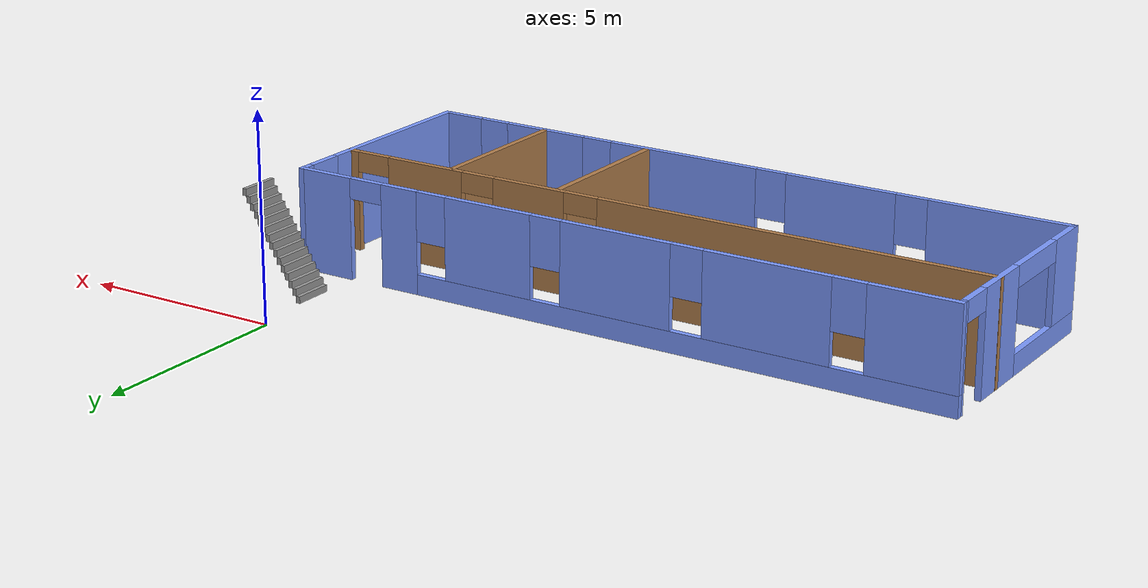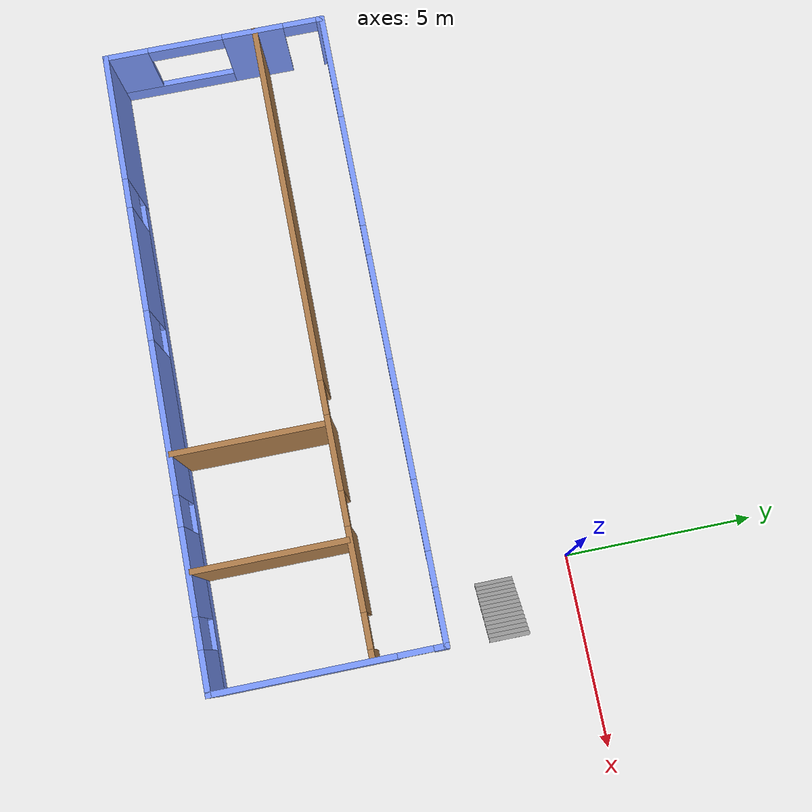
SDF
<?xml version='1.0'?>
<sdf version='1.6'>
  <model name='Marunouchi_Mansion'>
    <pose frame=''>-6.6954 -5.50792 0 0 -0 0</pose>
    <link name='Stairs_4'>
      <visual name='Stairs_4_Visual_0'>
        <pose frame=''>7.00606 3.48008 0.083333 0 -0 1.5708</pose>
        <geometry>
          <box>
            <size>1 0.105279 0.166667</size>
          </box>
        </geometry>
        <material>
          <script>
            <uri>file://media/materials/scripts/gazebo.material</uri>
            <name>Gazebo/Grey</name>
          </script>
          <ambient>1 1 1 1</ambient>
        </material>
        <meta>
          <layer>0</layer>
        </meta>
      </visual>
      <collision name='Stairs_4_Collision_0'>
        <geometry>
          <box>
            <size>1 0.105279 0.166667</size>
          </box>
        </geometry>
        <pose frame=''>7.00606 3.48008 0.083333 0 -0 1.5708</pose>
      </collision>
      <visual name='Stairs_4_Visual_1'>
        <pose frame=''>7.11134 3.48008 0.25 0 -0 1.5708</pose>
        <geometry>
          <box>
            <size>1 0.105279 0.166667</size>
          </box>
        </geometry>
        <material>
          <script>
            <uri>file://media/materials/scripts/gazebo.material</uri>
            <name>Gazebo/Grey</name>
          </script>
          <ambient>1 1 1 1</ambient>
        </material>
        <meta>
          <layer>0</layer>
        </meta>
      </visual>
      <collision name='Stairs_4_Collision_1'>
        <geometry>
          <box>
            <size>1 0.105279 0.166667</size>
          </box>
        </geometry>
        <pose frame=''>7.11134 3.48008 0.25 0 -0 1.5708</pose>
      </collision>
      <visual name='Stairs_4_Visual_2'>
        <pose frame=''>7.21662 3.48008 0.416667 0 -0 1.5708</pose>
        <geometry>
          <box>
            <size>1 0.105279 0.166667</size>
          </box>
        </geometry>
        <material>
          <script>
            <uri>file://media/materials/scripts/gazebo.material</uri>
            <name>Gazebo/Grey</name>
          </script>
          <ambient>1 1 1 1</ambient>
        </material>
        <meta>
          <layer>0</layer>
        </meta>
      </visual>
      <collision name='Stairs_4_Collision_2'>
        <geometry>
          <box>
            <size>1 0.105279 0.166667</size>
          </box>
        </geometry>
        <pose frame=''>7.21662 3.48008 0.416667 0 -0 1.5708</pose>
      </collision>
      <visual name='Stairs_4_Visual_3'>
        <pose frame=''>7.3219 3.48008 0.583333 0 -0 1.5708</pose>
        <geometry>
          <box>
            <size>1 0.105279 0.166667</size>
          </box>
        </geometry>
        <material>
          <script>
            <uri>file://media/materials/scripts/gazebo.material</uri>
            <name>Gazebo/Grey</name>
          </script>
          <ambient>1 1 1 1</ambient>
        </material>
        <meta>
          <layer>0</layer>
        </meta>
      </visual>
      <collision name='Stairs_4_Collision_3'>
        <geometry>
          <box>
            <size>1 0.105279 0.166667</size>
          </box>
        </geometry>
        <pose frame=''>7.3219 3.48008 0.583333 0 -0 1.5708</pose>
      </collision>
      <visual name='Stairs_4_Visual_4'>
        <pose frame=''>7.42718 3.48008 0.75 0 -0 1.5708</pose>
        <geometry>
          <box>
            <size>1 0.105279 0.166667</size>
          </box>
        </geometry>
        <material>
          <script>
            <uri>file://media/materials/scripts/gazebo.material</uri>
            <name>Gazebo/Grey</name>
          </script>
          <ambient>1 1 1 1</ambient>
        </material>
        <meta>
          <layer>0</layer>
        </meta>
      </visual>
      <collision name='Stairs_4_Collision_4'>
        <geometry>
          <box>
            <size>1 0.105279 0.166667</size>
          </box>
        </geometry>
        <pose frame=''>7.42718 3.48008 0.75 0 -0 1.5708</pose>
      </collision>
      <visual name='Stairs_4_Visual_5'>
        <pose frame=''>7.53245 3.48008 0.916667 0 -0 1.5708</pose>
        <geometry>
          <box>
            <size>1 0.105279 0.166667</size>
          </box>
        </geometry>
        <material>
          <script>
            <uri>file://media/materials/scripts/gazebo.material</uri>
            <name>Gazebo/Grey</name>
          </script>
          <ambient>1 1 1 1</ambient>
        </material>
        <meta>
          <layer>0</layer>
        </meta>
      </visual>
      <collision name='Stairs_4_Collision_5'>
        <geometry>
          <box>
            <size>1 0.105279 0.166667</size>
          </box>
        </geometry>
        <pose frame=''>7.53245 3.48008 0.916667 0 -0 1.5708</pose>
      </collision>
      <visual name='Stairs_4_Visual_6'>
        <pose frame=''>7.63773 3.48008 1.08333 0 -0 1.5708</pose>
        <geometry>
          <box>
            <size>1 0.105279 0.166667</size>
          </box>
        </geometry>
        <material>
          <script>
            <uri>file://media/materials/scripts/gazebo.material</uri>
            <name>Gazebo/Grey</name>
          </script>
          <ambient>1 1 1 1</ambient>
        </material>
        <meta>
          <layer>0</layer>
        </meta>
      </visual>
      <collision name='Stairs_4_Collision_6'>
        <geometry>
          <box>
            <size>1 0.105279 0.166667</size>
          </box>
        </geometry>
        <pose frame=''>7.63773 3.48008 1.08333 0 -0 1.5708</pose>
      </collision>
      <visual name='Stairs_4_Visual_7'>
        <pose frame=''>7.74301 3.48008 1.25 0 -0 1.5708</pose>
        <geometry>
          <box>
            <size>1 0.105279 0.166667</size>
          </box>
        </geometry>
        <material>
          <script>
            <uri>file://media/materials/scripts/gazebo.material</uri>
            <name>Gazebo/Grey</name>
          </script>
          <ambient>1 1 1 1</ambient>
        </material>
        <meta>
          <layer>0</layer>
        </meta>
      </visual>
      <collision name='Stairs_4_Collision_7'>
        <geometry>
          <box>
            <size>1 0.105279 0.166667</size>
          </box>
        </geometry>
        <pose frame=''>7.74301 3.48008 1.25 0 -0 1.5708</pose>
      </collision>
      <visual name='Stairs_4_Visual_8'>
        <pose frame=''>7.84829 3.48008 1.41667 0 -0 1.5708</pose>
        <geometry>
          <box>
            <size>1 0.105279 0.166667</size>
          </box>
        </geometry>
        <material>
          <script>
            <uri>file://media/materials/scripts/gazebo.material</uri>
            <name>Gazebo/Grey</name>
          </script>
          <ambient>1 1 1 1</ambient>
        </material>
        <meta>
          <layer>0</layer>
        </meta>
      </visual>
      <collision name='Stairs_4_Collision_8'>
        <geometry>
          <box>
            <size>1 0.105279 0.166667</size>
          </box>
        </geometry>
        <pose frame=''>7.84829 3.48008 1.41667 0 -0 1.5708</pose>
      </collision>
      <visual name='Stairs_4_Visual_9'>
        <pose frame=''>7.95357 3.48008 1.58333 0 -0 1.5708</pose>
        <geometry>
          <box>
            <size>1 0.105279 0.166667</size>
          </box>
        </geometry>
        <material>
          <script>
            <uri>file://media/materials/scripts/gazebo.material</uri>
            <name>Gazebo/Grey</name>
          </script>
          <ambient>1 1 1 1</ambient>
        </material>
        <meta>
          <layer>0</layer>
        </meta>
      </visual>
      <collision name='Stairs_4_Collision_9'>
        <geometry>
          <box>
            <size>1 0.105279 0.166667</size>
          </box>
        </geometry>
        <pose frame=''>7.95357 3.48008 1.58333 0 -0 1.5708</pose>
      </collision>
      <visual name='Stairs_4_Visual_10'>
        <pose frame=''>8.05885 3.48008 1.75 0 -0 1.5708</pose>
        <geometry>
          <box>
            <size>1 0.105279 0.166667</size>
          </box>
        </geometry>
        <material>
          <script>
            <uri>file://media/materials/scripts/gazebo.material</uri>
            <name>Gazebo/Grey</name>
          </script>
          <ambient>1 1 1 1</ambient>
        </material>
        <meta>
          <layer>0</layer>
        </meta>
      </visual>
      <collision name='Stairs_4_Collision_10'>
        <geometry>
          <box>
            <size>1 0.105279 0.166667</size>
          </box>
        </geometry>
        <pose frame=''>8.05885 3.48008 1.75 0 -0 1.5708</pose>
      </collision>
      <visual name='Stairs_4_Visual_11'>
        <pose frame=''>8.16413 3.48008 1.91667 0 -0 1.5708</pose>
        <geometry>
          <box>
            <size>1 0.105279 0.166667</size>
          </box>
        </geometry>
        <material>
          <script>
            <uri>file://media/materials/scripts/gazebo.material</uri>
            <name>Gazebo/Grey</name>
          </script>
          <ambient>1 1 1 1</ambient>
        </material>
        <meta>
          <layer>0</layer>
        </meta>
      </visual>
      <collision name='Stairs_4_Collision_11'>
        <geometry>
          <box>
            <size>1 0.105279 0.166667</size>
          </box>
        </geometry>
        <pose frame=''>8.16413 3.48008 1.91667 0 -0 1.5708</pose>
      </collision>
      <visual name='Stairs_4_Visual_12'>
        <pose frame=''>8.26941 3.48008 2.08333 0 -0 1.5708</pose>
        <geometry>
          <box>
            <size>1 0.105279 0.166667</size>
          </box>
        </geometry>
        <material>
          <script>
            <uri>file://media/materials/scripts/gazebo.material</uri>
            <name>Gazebo/Grey</name>
          </script>
          <ambient>1 1 1 1</ambient>
        </material>
        <meta>
          <layer>0</layer>
        </meta>
      </visual>
      <collision name='Stairs_4_Collision_12'>
        <geometry>
          <box>
            <size>1 0.105279 0.166667</size>
          </box>
        </geometry>
        <pose frame=''>8.26941 3.48008 2.08333 0 -0 1.5708</pose>
      </collision>
      <visual name='Stairs_4_Visual_13'>
        <pose frame=''>8.37468 3.48008 2.25 0 -0 1.5708</pose>
        <geometry>
          <box>
            <size>1 0.105279 0.166667</size>
          </box>
        </geometry>
        <material>
          <script>
            <uri>file://media/materials/scripts/gazebo.material</uri>
            <name>Gazebo/Grey</name>
          </script>
          <ambient>1 1 1 1</ambient>
        </material>
        <meta>
          <layer>0</layer>
        </meta>
      </visual>
      <collision name='Stairs_4_Collision_13'>
        <geometry>
          <box>
            <size>1 0.105279 0.166667</size>
          </box>
        </geometry>
        <pose frame=''>8.37468 3.48008 2.25 0 -0 1.5708</pose>
      </collision>
      <visual name='Stairs_4_Visual_14'>
        <pose frame=''>8.47996 3.48008 2.41667 0 -0 1.5708</pose>
        <geometry>
          <box>
            <size>1 0.105279 0.166667</size>
          </box>
        </geometry>
        <material>
          <script>
            <uri>file://media/materials/scripts/gazebo.material</uri>
            <name>Gazebo/Grey</name>
          </script>
          <ambient>1 1 1 1</ambient>
        </material>
        <meta>
          <layer>0</layer>
        </meta>
      </visual>
      <collision name='Stairs_4_Collision_14'>
        <geometry>
          <box>
            <size>1 0.105279 0.166667</size>
          </box>
        </geometry>
        <pose frame=''>8.47996 3.48008 2.41667 0 -0 1.5708</pose>
      </collision>
    </link>
    <link name='Wall_12'>
      <pose frame=''>-0.027601 -3.90508 0 0 -0 0</pose>
      <visual name='Wall_12_Visual_0'>
        <pose frame=''>-6.72865 0 1.25 0 -0 0</pose>
        <geometry>
          <box>
            <size>3.54271 0.15 2.5</size>
          </box>
        </geometry>
        <material>
          <script>
            <uri>file://media/materials/scripts/gazebo.material</uri>
            <name>Gazebo/Grey</name>
          </script>
          <ambient>0.486275 0.607843 1 1</ambient>
        </material>
        <meta>
          <layer>0</layer>
        </meta>
      </visual>
      <collision name='Wall_12_Collision_0'>
        <geometry>
          <box>
            <size>3.54271 0.15 2.5</size>
          </box>
        </geometry>
        <pose frame=''>-6.72865 0 1.25 0 -0 0</pose>
      </collision>
      <visual name='Wall_12_Visual_1'>
        <pose frame=''>1.77135 0 0.25 0 -0 0</pose>
        <geometry>
          <box>
            <size>13.4573 0.15 0.5</size>
          </box>
        </geometry>
        <material>
          <script>
            <uri>file://media/materials/scripts/gazebo.material</uri>
            <name>Gazebo/Grey</name>
          </script>
          <ambient>0.486275 0.607843 1 1</ambient>
        </material>
        <meta>
          <layer>0</layer>
        </meta>
      </visual>
      <collision name='Wall_12_Collision_1'>
        <geometry>
          <box>
            <size>13.4573 0.15 0.5</size>
          </box>
        </geometry>
        <pose frame=''>1.77135 0 0.25 0 -0 0</pose>
      </collision>
      <visual name='Wall_12_Visual_2'>
        <pose frame=''>-2.74365 0 1.5 0 -0 0</pose>
        <geometry>
          <box>
            <size>2.82729 0.15 2</size>
          </box>
        </geometry>
        <material>
          <script>
            <uri>file://media/materials/scripts/gazebo.material</uri>
            <name>Gazebo/Grey</name>
          </script>
          <ambient>0.486275 0.607843 1 1</ambient>
        </material>
        <meta>
          <layer>0</layer>
        </meta>
      </visual>
      <collision name='Wall_12_Collision_2'>
        <geometry>
          <box>
            <size>2.82729 0.15 2</size>
          </box>
        </geometry>
        <pose frame=''>-2.74365 0 1.5 0 -0 0</pose>
      </collision>
      <visual name='Wall_12_Visual_3'>
        <pose frame=''>1.48818 0 1.5 0 -0 0</pose>
        <geometry>
          <box>
            <size>4.03638 0.15 2</size>
          </box>
        </geometry>
        <material>
          <script>
            <uri>file://media/materials/scripts/gazebo.material</uri>
            <name>Gazebo/Grey</name>
          </script>
          <ambient>0.486275 0.607843 1 1</ambient>
        </material>
        <meta>
          <layer>0</layer>
        </meta>
      </visual>
      <collision name='Wall_12_Collision_3'>
        <geometry>
          <box>
            <size>4.03638 0.15 2</size>
          </box>
        </geometry>
        <pose frame=''>1.48818 0 1.5 0 -0 0</pose>
      </collision>
      <visual name='Wall_12_Visual_4'>
        <pose frame=''>5.42345 0 1.5 0 -0 0</pose>
        <geometry>
          <box>
            <size>2.23415 0.15 2</size>
          </box>
        </geometry>
        <material>
          <script>
            <uri>file://media/materials/scripts/gazebo.material</uri>
            <name>Gazebo/Grey</name>
          </script>
          <ambient>0.486275 0.607843 1 1</ambient>
        </material>
        <meta>
          <layer>0</layer>
        </meta>
      </visual>
      <collision name='Wall_12_Collision_4'>
        <geometry>
          <box>
            <size>2.23415 0.15 2</size>
          </box>
        </geometry>
        <pose frame=''>5.42345 0 1.5 0 -0 0</pose>
      </collision>
      <visual name='Wall_12_Visual_5'>
        <pose frame=''>7.92026 0 1.5 0 -0 0</pose>
        <geometry>
          <box>
            <size>1.15948 0.15 2</size>
          </box>
        </geometry>
        <material>
          <script>
            <uri>file://media/materials/scripts/gazebo.material</uri>
            <name>Gazebo/Grey</name>
          </script>
          <ambient>0.486275 0.607843 1 1</ambient>
        </material>
        <meta>
          <layer>0</layer>
        </meta>
      </visual>
      <collision name='Wall_12_Collision_5'>
        <geometry>
          <box>
            <size>1.15948 0.15 2</size>
          </box>
        </geometry>
        <pose frame=''>7.92026 0 1.5 0 -0 0</pose>
      </collision>
      <visual name='Wall_12_Visual_6'>
        <pose frame=''>-4.55729 0 1.9 0 -0 0</pose>
        <geometry>
          <box>
            <size>0.8 0.15 1.2</size>
          </box>
        </geometry>
        <material>
          <script>
            <uri>file://media/materials/scripts/gazebo.material</uri>
            <name>Gazebo/Grey</name>
          </script>
          <ambient>0.486275 0.607843 1 1</ambient>
        </material>
        <meta>
          <layer>0</layer>
        </meta>
      </visual>
      <collision name='Wall_12_Collision_6'>
        <geometry>
          <box>
            <size>0.8 0.15 1.2</size>
          </box>
        </geometry>
        <pose frame=''>-4.55729 0 1.9 0 -0 0</pose>
      </collision>
      <visual name='Wall_12_Visual_7'>
        <pose frame=''>-0.930008 0 1.9 0 -0 0</pose>
        <geometry>
          <box>
            <size>0.8 0.15 1.2</size>
          </box>
        </geometry>
        <material>
          <script>
            <uri>file://media/materials/scripts/gazebo.material</uri>
            <name>Gazebo/Grey</name>
          </script>
          <ambient>0.486275 0.607843 1 1</ambient>
        </material>
        <meta>
          <layer>0</layer>
        </meta>
      </visual>
      <collision name='Wall_12_Collision_7'>
        <geometry>
          <box>
            <size>0.8 0.15 1.2</size>
          </box>
        </geometry>
        <pose frame=''>-0.930008 0 1.9 0 -0 0</pose>
      </collision>
      <visual name='Wall_12_Visual_8'>
        <pose frame=''>3.90637 0 1.9 0 -0 0</pose>
        <geometry>
          <box>
            <size>0.8 0.15 1.2</size>
          </box>
        </geometry>
        <material>
          <script>
            <uri>file://media/materials/scripts/gazebo.material</uri>
            <name>Gazebo/Grey</name>
          </script>
          <ambient>0.486275 0.607843 1 1</ambient>
        </material>
        <meta>
          <layer>0</layer>
        </meta>
      </visual>
      <collision name='Wall_12_Collision_8'>
        <geometry>
          <box>
            <size>0.8 0.15 1.2</size>
          </box>
        </geometry>
        <pose frame=''>3.90637 0 1.9 0 -0 0</pose>
      </collision>
      <visual name='Wall_12_Visual_9'>
        <pose frame=''>6.94052 0 1.9 0 -0 0</pose>
        <geometry>
          <box>
            <size>0.8 0.15 1.2</size>
          </box>
        </geometry>
        <material>
          <script>
            <uri>file://media/materials/scripts/gazebo.material</uri>
            <name>Gazebo/Grey</name>
          </script>
          <ambient>0.486275 0.607843 1 1</ambient>
        </material>
        <meta>
          <layer>0</layer>
        </meta>
      </visual>
      <collision name='Wall_12_Collision_9'>
        <geometry>
          <box>
            <size>0.8 0.15 1.2</size>
          </box>
        </geometry>
        <pose frame=''>6.94052 0 1.9 0 -0 0</pose>
      </collision>
    </link>
    <link name='Wall_13'>
      <pose frame=''>8.3974 -0.980078 0 0 -0 1.5708</pose>
      <visual name='Wall_13_Visual_0'>
        <pose frame=''>-0.647452 0 1.25 0 -0 0</pose>
        <geometry>
          <box>
            <size>4.7051 0.15 2.5</size>
          </box>
        </geometry>
        <material>
          <script>
            <uri>file://media/materials/scripts/gazebo.material</uri>
            <name>Gazebo/Grey</name>
          </script>
          <ambient>0.486275 0.607843 1 1</ambient>
        </material>
        <meta>
          <layer>0</layer>
        </meta>
      </visual>
      <collision name='Wall_13_Collision_0'>
        <geometry>
          <box>
            <size>4.7051 0.15 2.5</size>
          </box>
        </geometry>
        <pose frame=''>-0.647452 0 1.25 0 -0 0</pose>
      </collision>
      <visual name='Wall_13_Visual_1'>
        <pose frame=''>2.80255 0 1.25 0 -0 0</pose>
        <geometry>
          <box>
            <size>0.394905 0.15 2.5</size>
          </box>
        </geometry>
        <material>
          <script>
            <uri>file://media/materials/scripts/gazebo.material</uri>
            <name>Gazebo/Grey</name>
          </script>
          <ambient>0.486275 0.607843 1 1</ambient>
        </material>
        <meta>
          <layer>0</layer>
        </meta>
      </visual>
      <collision name='Wall_13_Collision_1'>
        <geometry>
          <box>
            <size>0.394905 0.15 2.5</size>
          </box>
        </geometry>
        <pose frame=''>2.80255 0 1.25 0 -0 0</pose>
      </collision>
      <visual name='Wall_13_Visual_2'>
        <pose frame=''>2.1551 0 2.25 0 -0 0</pose>
        <geometry>
          <box>
            <size>0.9 0.15 0.5</size>
          </box>
        </geometry>
        <material>
          <script>
            <uri>file://media/materials/scripts/gazebo.material</uri>
            <name>Gazebo/Grey</name>
          </script>
          <ambient>0.486275 0.607843 1 1</ambient>
        </material>
        <meta>
          <layer>0</layer>
        </meta>
      </visual>
      <collision name='Wall_13_Collision_2'>
        <geometry>
          <box>
            <size>0.9 0.15 0.5</size>
          </box>
        </geometry>
        <pose frame=''>2.1551 0 2.25 0 -0 0</pose>
      </collision>
    </link>
    <link name='Wall_14'>
      <pose frame=''>-0.027601 1.94492 0 0 -0 3.14159</pose>
      <visual name='Wall_14_Visual_0'>
        <pose frame=''>-7.74488 0 1.25 0 -0 0</pose>
        <geometry>
          <box>
            <size>1.51025 0.15 2.5</size>
          </box>
        </geometry>
        <material>
          <script>
            <uri>file://media/materials/scripts/gazebo.material</uri>
            <name>Gazebo/Grey</name>
          </script>
          <ambient>0.486275 0.607843 1 1</ambient>
        </material>
        <meta>
          <layer>0</layer>
        </meta>
      </visual>
      <collision name='Wall_14_Collision_0'>
        <geometry>
          <box>
            <size>1.51025 0.15 2.5</size>
          </box>
        </geometry>
        <pose frame=''>-7.74488 0 1.25 0 -0 0</pose>
      </collision>
      <visual name='Wall_14_Visual_1'>
        <pose frame=''>-5.58589 0 1.25 0 -0 0</pose>
        <geometry>
          <box>
            <size>1.00774 0.15 2.5</size>
          </box>
        </geometry>
        <material>
          <script>
            <uri>file://media/materials/scripts/gazebo.material</uri>
            <name>Gazebo/Grey</name>
          </script>
          <ambient>0.486275 0.607843 1 1</ambient>
        </material>
        <meta>
          <layer>0</layer>
        </meta>
      </visual>
      <collision name='Wall_14_Collision_1'>
        <geometry>
          <box>
            <size>1.00774 0.15 2.5</size>
          </box>
        </geometry>
        <pose frame=''>-5.58589 0 1.25 0 -0 0</pose>
      </collision>
      <visual name='Wall_14_Visual_2'>
        <pose frame=''>1.70899 0 0.25 0 -0 0</pose>
        <geometry>
          <box>
            <size>13.582 0.15 0.5</size>
          </box>
        </geometry>
        <material>
          <script>
            <uri>file://media/materials/scripts/gazebo.material</uri>
            <name>Gazebo/Grey</name>
          </script>
          <ambient>0.486275 0.607843 1 1</ambient>
        </material>
        <meta>
          <layer>0</layer>
        </meta>
      </visual>
      <collision name='Wall_14_Collision_2'>
        <geometry>
          <box>
            <size>13.582 0.15 0.5</size>
          </box>
        </geometry>
        <pose frame=''>1.70899 0 0.25 0 -0 0</pose>
      </collision>
      <visual name='Wall_14_Visual_3'>
        <pose frame=''>-3.11932 0 1.5 0 -0 0</pose>
        <geometry>
          <box>
            <size>2.3254 0.15 2</size>
          </box>
        </geometry>
        <material>
          <script>
            <uri>file://media/materials/scripts/gazebo.material</uri>
            <name>Gazebo/Grey</name>
          </script>
          <ambient>0.486275 0.607843 1 1</ambient>
        </material>
        <meta>
          <layer>0</layer>
        </meta>
      </visual>
      <collision name='Wall_14_Collision_3'>
        <geometry>
          <box>
            <size>2.3254 0.15 2</size>
          </box>
        </geometry>
        <pose frame=''>-3.11932 0 1.5 0 -0 0</pose>
      </collision>
      <visual name='Wall_14_Visual_4'>
        <pose frame=''>0.257021 0 1.5 0 -0 0</pose>
        <geometry>
          <box>
            <size>2.82729 0.15 2</size>
          </box>
        </geometry>
        <material>
          <script>
            <uri>file://media/materials/scripts/gazebo.material</uri>
            <name>Gazebo/Grey</name>
          </script>
          <ambient>0.486275 0.607843 1 1</ambient>
        </material>
        <meta>
          <layer>0</layer>
        </meta>
      </visual>
      <collision name='Wall_14_Collision_4'>
        <geometry>
          <box>
            <size>2.82729 0.15 2</size>
          </box>
        </geometry>
        <pose frame=''>0.257021 0 1.5 0 -0 0</pose>
      </collision>
      <visual name='Wall_14_Visual_5'>
        <pose frame=''>4.00978 0 1.5 0 -0 0</pose>
        <geometry>
          <box>
            <size>3.07823 0.15 2</size>
          </box>
        </geometry>
        <material>
          <script>
            <uri>file://media/materials/scripts/gazebo.material</uri>
            <name>Gazebo/Grey</name>
          </script>
          <ambient>0.486275 0.607843 1 1</ambient>
        </material>
        <meta>
          <layer>0</layer>
        </meta>
      </visual>
      <collision name='Wall_14_Collision_5'>
        <geometry>
          <box>
            <size>3.07823 0.15 2</size>
          </box>
        </geometry>
        <pose frame=''>4.00978 0 1.5 0 -0 0</pose>
      </collision>
      <visual name='Wall_14_Visual_6'>
        <pose frame=''>7.42445 0 1.5 0 -0 0</pose>
        <geometry>
          <box>
            <size>2.1511 0.15 2</size>
          </box>
        </geometry>
        <material>
          <script>
            <uri>file://media/materials/scripts/gazebo.material</uri>
            <name>Gazebo/Grey</name>
          </script>
          <ambient>0.486275 0.607843 1 1</ambient>
        </material>
        <meta>
          <layer>0</layer>
        </meta>
      </visual>
      <collision name='Wall_14_Collision_6'>
        <geometry>
          <box>
            <size>2.1511 0.15 2</size>
          </box>
        </geometry>
        <pose frame=''>7.42445 0 1.5 0 -0 0</pose>
      </collision>
      <visual name='Wall_14_Visual_7'>
        <pose frame=''>-4.68202 0 1.9 0 -0 0</pose>
        <geometry>
          <box>
            <size>0.8 0.15 1.2</size>
          </box>
        </geometry>
        <material>
          <script>
            <uri>file://media/materials/scripts/gazebo.material</uri>
            <name>Gazebo/Grey</name>
          </script>
          <ambient>0.486275 0.607843 1 1</ambient>
        </material>
        <meta>
          <layer>0</layer>
        </meta>
      </visual>
      <collision name='Wall_14_Collision_7'>
        <geometry>
          <box>
            <size>0.8 0.15 1.2</size>
          </box>
        </geometry>
        <pose frame=''>-4.68202 0 1.9 0 -0 0</pose>
      </collision>
      <visual name='Wall_14_Visual_8'>
        <pose frame=''>-1.55662 0 1.9 0 -0 0</pose>
        <geometry>
          <box>
            <size>0.8 0.15 1.2</size>
          </box>
        </geometry>
        <material>
          <script>
            <uri>file://media/materials/scripts/gazebo.material</uri>
            <name>Gazebo/Grey</name>
          </script>
          <ambient>0.486275 0.607843 1 1</ambient>
        </material>
        <meta>
          <layer>0</layer>
        </meta>
      </visual>
      <collision name='Wall_14_Collision_8'>
        <geometry>
          <box>
            <size>0.8 0.15 1.2</size>
          </box>
        </geometry>
        <pose frame=''>-1.55662 0 1.9 0 -0 0</pose>
      </collision>
      <visual name='Wall_14_Visual_9'>
        <pose frame=''>2.07066 0 1.9 0 -0 0</pose>
        <geometry>
          <box>
            <size>0.8 0.15 1.2</size>
          </box>
        </geometry>
        <material>
          <script>
            <uri>file://media/materials/scripts/gazebo.material</uri>
            <name>Gazebo/Grey</name>
          </script>
          <ambient>0.486275 0.607843 1 1</ambient>
        </material>
        <meta>
          <layer>0</layer>
        </meta>
      </visual>
      <collision name='Wall_14_Collision_9'>
        <geometry>
          <box>
            <size>0.8 0.15 1.2</size>
          </box>
        </geometry>
        <pose frame=''>2.07066 0 1.9 0 -0 0</pose>
      </collision>
      <visual name='Wall_14_Visual_10'>
        <pose frame=''>5.9489 0 1.9 0 -0 0</pose>
        <geometry>
          <box>
            <size>0.8 0.15 1.2</size>
          </box>
        </geometry>
        <material>
          <script>
            <uri>file://media/materials/scripts/gazebo.material</uri>
            <name>Gazebo/Grey</name>
          </script>
          <ambient>0.486275 0.607843 1 1</ambient>
        </material>
        <meta>
          <layer>0</layer>
        </meta>
      </visual>
      <collision name='Wall_14_Collision_10'>
        <geometry>
          <box>
            <size>0.8 0.15 1.2</size>
          </box>
        </geometry>
        <pose frame=''>5.9489 0 1.9 0 -0 0</pose>
      </collision>
      <visual name='Wall_14_Visual_11'>
        <pose frame=''>-6.53976 0 2.25 0 -0 0</pose>
        <geometry>
          <box>
            <size>0.9 0.15 0.5</size>
          </box>
        </geometry>
        <material>
          <script>
            <uri>file://media/materials/scripts/gazebo.material</uri>
            <name>Gazebo/Grey</name>
          </script>
          <ambient>0.486275 0.607843 1 1</ambient>
        </material>
        <meta>
          <layer>0</layer>
        </meta>
      </visual>
      <collision name='Wall_14_Collision_11'>
        <geometry>
          <box>
            <size>0.9 0.15 0.5</size>
          </box>
        </geometry>
        <pose frame=''>-6.53976 0 2.25 0 -0 0</pose>
      </collision>
    </link>
    <link name='Wall_15'>
      <pose frame=''>-8.4526 -0.980078 0 0 0 -1.5708</pose>
      <visual name='Wall_15_Visual_0'>
        <pose frame=''>-2.8827 0 1.25 0 -0 0</pose>
        <geometry>
          <box>
            <size>0.234611 0.15 2.5</size>
          </box>
        </geometry>
        <material>
          <script>
            <uri>file://media/materials/scripts/gazebo.material</uri>
            <name>Gazebo/Grey</name>
          </script>
          <ambient>0.486275 0.607843 1 1</ambient>
        </material>
        <meta>
          <layer>0</layer>
        </meta>
      </visual>
      <collision name='Wall_15_Collision_0'>
        <geometry>
          <box>
            <size>0.234611 0.15 2.5</size>
          </box>
        </geometry>
        <pose frame=''>-2.8827 0 1.25 0 -0 0</pose>
      </collision>
      <visual name='Wall_15_Visual_1'>
        <pose frame=''>-1.0388 0 1.25 0 -0 0</pose>
        <geometry>
          <box>
            <size>1.65319 0.15 2.5</size>
          </box>
        </geometry>
        <material>
          <script>
            <uri>file://media/materials/scripts/gazebo.material</uri>
            <name>Gazebo/Grey</name>
          </script>
          <ambient>0.486275 0.607843 1 1</ambient>
        </material>
        <meta>
          <layer>0</layer>
        </meta>
      </visual>
      <collision name='Wall_15_Collision_1'>
        <geometry>
          <box>
            <size>1.65319 0.15 2.5</size>
          </box>
        </geometry>
        <pose frame=''>-1.0388 0 1.25 0 -0 0</pose>
      </collision>
      <visual name='Wall_15_Visual_2'>
        <pose frame=''>1.3939 0 0.25 0 -0 0</pose>
        <geometry>
          <box>
            <size>3.2122 0.15 0.5</size>
          </box>
        </geometry>
        <material>
          <script>
            <uri>file://media/materials/scripts/gazebo.material</uri>
            <name>Gazebo/Grey</name>
          </script>
          <ambient>0.486275 0.607843 1 1</ambient>
        </material>
        <meta>
          <layer>0</layer>
        </meta>
      </visual>
      <collision name='Wall_15_Collision_2'>
        <geometry>
          <box>
            <size>3.2122 0.15 0.5</size>
          </box>
        </geometry>
        <pose frame=''>1.3939 0 0.25 0 -0 0</pose>
      </collision>
      <visual name='Wall_15_Visual_3'>
        <pose frame=''>2.3939 0 1.5 0 -0 0</pose>
        <geometry>
          <box>
            <size>1.2122 0.15 2</size>
          </box>
        </geometry>
        <material>
          <script>
            <uri>file://media/materials/scripts/gazebo.material</uri>
            <name>Gazebo/Grey</name>
          </script>
          <ambient>0.486275 0.607843 1 1</ambient>
        </material>
        <meta>
          <layer>0</layer>
        </meta>
      </visual>
      <collision name='Wall_15_Collision_3'>
        <geometry>
          <box>
            <size>1.2122 0.15 2</size>
          </box>
        </geometry>
        <pose frame=''>2.3939 0 1.5 0 -0 0</pose>
      </collision>
      <visual name='Wall_15_Visual_4'>
        <pose frame=''>-2.31539 0 2.25 0 -0 0</pose>
        <geometry>
          <box>
            <size>0.9 0.15 0.5</size>
          </box>
        </geometry>
        <material>
          <script>
            <uri>file://media/materials/scripts/gazebo.material</uri>
            <name>Gazebo/Grey</name>
          </script>
          <ambient>0.486275 0.607843 1 1</ambient>
        </material>
        <meta>
          <layer>0</layer>
        </meta>
      </visual>
      <collision name='Wall_15_Collision_4'>
        <geometry>
          <box>
            <size>0.9 0.15 0.5</size>
          </box>
        </geometry>
        <pose frame=''>-2.31539 0 2.25 0 -0 0</pose>
      </collision>
      <visual name='Wall_15_Visual_5'>
        <pose frame=''>0.787798 0 2.25 0 -0 0</pose>
        <geometry>
          <box>
            <size>2 0.15 0.5</size>
          </box>
        </geometry>
        <material>
          <script>
            <uri>file://media/materials/scripts/gazebo.material</uri>
            <name>Gazebo/Grey</name>
          </script>
          <ambient>0.486275 0.607843 1 1</ambient>
        </material>
        <meta>
          <layer>0</layer>
        </meta>
      </visual>
      <collision name='Wall_15_Collision_5'>
        <geometry>
          <box>
            <size>2 0.15 0.5</size>
          </box>
        </geometry>
        <pose frame=''>0.787798 0 2.25 0 -0 0</pose>
      </collision>
    </link>
    <link name='Wall_19'>
      <pose frame=''>-0.032601 0.118922 0 0 -0 3.14159</pose>
      <visual name='Wall_19_Visual_0'>
        <pose frame=''>-8.32271 0 1.25 0 -0 0</pose>
        <geometry>
          <box>
            <size>0.354584 0.15 2.5</size>
          </box>
        </geometry>
        <material>
          <script>
            <uri>file://media/materials/scripts/gazebo.material</uri>
            <name>Gazebo/Wood</name>
          </script>
          <ambient>0.921569 0.807843 0.615686 1</ambient>
        </material>
        <meta>
          <layer>0</layer>
        </meta>
      </visual>
      <collision name='Wall_19_Collision_0'>
        <geometry>
          <box>
            <size>0.354584 0.15 2.5</size>
          </box>
        </geometry>
        <pose frame=''>-8.32271 0 1.25 0 -0 0</pose>
      </collision>
      <visual name='Wall_19_Visual_1'>
        <pose frame=''>-6.17785 0 1.25 0 -0 0</pose>
        <geometry>
          <box>
            <size>2.13514 0.15 2.5</size>
          </box>
        </geometry>
        <material>
          <script>
            <uri>file://media/materials/scripts/gazebo.material</uri>
            <name>Gazebo/Wood</name>
          </script>
          <ambient>0.921569 0.807843 0.615686 1</ambient>
        </material>
        <meta>
          <layer>0</layer>
        </meta>
      </visual>
      <collision name='Wall_19_Collision_1'>
        <geometry>
          <box>
            <size>2.13514 0.15 2.5</size>
          </box>
        </geometry>
        <pose frame=''>-6.17785 0 1.25 0 -0 0</pose>
      </collision>
      <visual name='Wall_19_Visual_2'>
        <pose frame=''>-3.23198 0 1.25 0 -0 0</pose>
        <geometry>
          <box>
            <size>1.9566 0.15 2.5</size>
          </box>
        </geometry>
        <material>
          <script>
            <uri>file://media/materials/scripts/gazebo.material</uri>
            <name>Gazebo/Wood</name>
          </script>
          <ambient>0.921569 0.807843 0.615686 1</ambient>
        </material>
        <meta>
          <layer>0</layer>
        </meta>
      </visual>
      <collision name='Wall_19_Collision_2'>
        <geometry>
          <box>
            <size>1.9566 0.15 2.5</size>
          </box>
        </geometry>
        <pose frame=''>-3.23198 0 1.25 0 -0 0</pose>
      </collision>
      <visual name='Wall_19_Visual_3'>
        <pose frame=''>3.57316 0 1.25 0 -0 0</pose>
        <geometry>
          <box>
            <size>9.85368 0.15 2.5</size>
          </box>
        </geometry>
        <material>
          <script>
            <uri>file://media/materials/scripts/gazebo.material</uri>
            <name>Gazebo/Wood</name>
          </script>
          <ambient>0.921569 0.807843 0.615686 1</ambient>
        </material>
        <meta>
          <layer>0</layer>
        </meta>
      </visual>
      <collision name='Wall_19_Collision_3'>
        <geometry>
          <box>
            <size>9.85368 0.15 2.5</size>
          </box>
        </geometry>
        <pose frame=''>3.57316 0 1.25 0 -0 0</pose>
      </collision>
      <visual name='Wall_19_Visual_4'>
        <pose frame=''>-7.69542 0 2.25 0 -0 0</pose>
        <geometry>
          <box>
            <size>0.9 0.15 0.5</size>
          </box>
        </geometry>
        <material>
          <script>
            <uri>file://media/materials/scripts/gazebo.material</uri>
            <name>Gazebo/Wood</name>
          </script>
          <ambient>0.921569 0.807843 0.615686 1</ambient>
        </material>
        <meta>
          <layer>0</layer>
        </meta>
      </visual>
      <collision name='Wall_19_Collision_4'>
        <geometry>
          <box>
            <size>0.9 0.15 0.5</size>
          </box>
        </geometry>
        <pose frame=''>-7.69542 0 2.25 0 -0 0</pose>
      </collision>
      <visual name='Wall_19_Visual_5'>
        <pose frame=''>-4.66028 0 2.25 0 -0 0</pose>
        <geometry>
          <box>
            <size>0.9 0.15 0.5</size>
          </box>
        </geometry>
        <material>
          <script>
            <uri>file://media/materials/scripts/gazebo.material</uri>
            <name>Gazebo/Wood</name>
          </script>
          <ambient>0.921569 0.807843 0.615686 1</ambient>
        </material>
        <meta>
          <layer>0</layer>
        </meta>
      </visual>
      <collision name='Wall_19_Collision_5'>
        <geometry>
          <box>
            <size>0.9 0.15 0.5</size>
          </box>
        </geometry>
        <pose frame=''>-4.66028 0 2.25 0 -0 0</pose>
      </collision>
      <visual name='Wall_19_Visual_6'>
        <pose frame=''>-1.80368 0 2.25 0 -0 0</pose>
        <geometry>
          <box>
            <size>0.9 0.15 0.5</size>
          </box>
        </geometry>
        <material>
          <script>
            <uri>file://media/materials/scripts/gazebo.material</uri>
            <name>Gazebo/Wood</name>
          </script>
          <ambient>0.921569 0.807843 0.615686 1</ambient>
        </material>
        <meta>
          <layer>0</layer>
        </meta>
      </visual>
      <collision name='Wall_19_Collision_6'>
        <geometry>
          <box>
            <size>0.9 0.15 0.5</size>
          </box>
        </geometry>
        <pose frame=''>-1.80368 0 2.25 0 -0 0</pose>
      </collision>
    </link>
    <link name='Wall_31'>
      <collision name='Wall_31_Collision'>
        <geometry>
          <box>
            <size>4 0.15 2.5</size>
          </box>
        </geometry>
        <pose frame=''>0 0 1.25 0 -0 0</pose>
      </collision>
      <visual name='Wall_31_Visual'>
        <pose frame=''>0 0 1.25 0 -0 0</pose>
        <geometry>
          <box>
            <size>4 0.15 2.5</size>
          </box>
        </geometry>
        <material>
          <script>
            <uri>file://media/materials/scripts/gazebo.material</uri>
            <name>Gazebo/Wood</name>
          </script>
          <ambient>0.921569 0.807843 0.615686 1</ambient>
        </material>
        <meta>
          <layer>0</layer>
        </meta>
      </visual>
      <pose frame=''>5.4144 -1.88108 0 0 -0 1.5708</pose>
    </link>
    <link name='Wall_35'>
      <collision name='Wall_35_Collision'>
        <geometry>
          <box>
            <size>4 0.15 2.5</size>
          </box>
        </geometry>
        <pose frame=''>0 0 1.25 0 -0 0</pose>
      </collision>
      <visual name='Wall_35_Visual'>
        <pose frame=''>0 0 1.25 0 -0 0</pose>
        <geometry>
          <box>
            <size>4 0.15 2.5</size>
          </box>
        </geometry>
        <material>
          <script>
            <uri>file://media/materials/scripts/gazebo.material</uri>
            <name>Gazebo/Wood</name>
          </script>
          <ambient>0.921569 0.807843 0.615686 1</ambient>
        </material>
        <meta>
          <layer>0</layer>
        </meta>
      </visual>
      <pose frame=''>2.4354 -1.92108 0 0 -0 1.5708</pose>
    </link>
    <static>1</static>
  </model>
</sdf>
